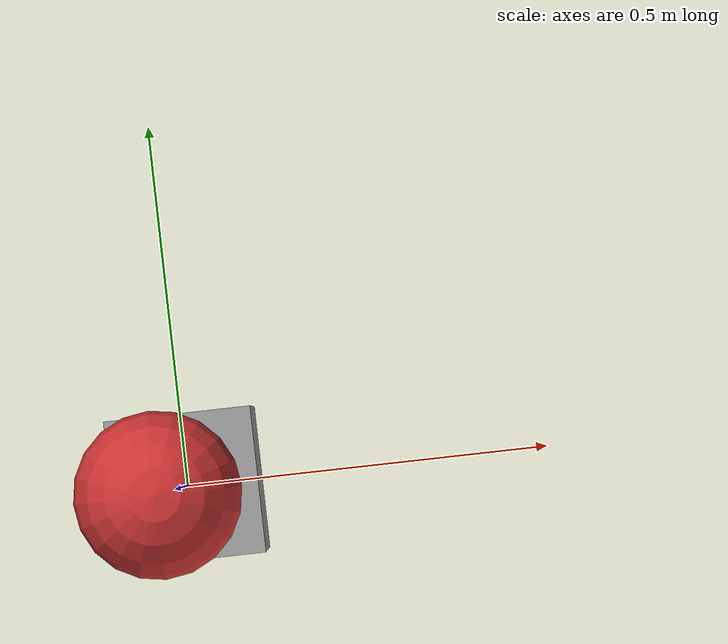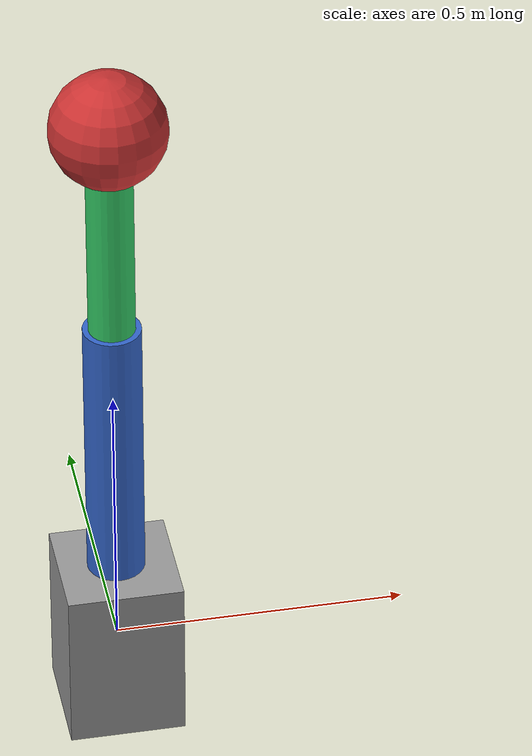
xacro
<?xml version="1.0"?>
<robot name="armstrong_v1" xmlns:xacro="http://www.ros.org/wiki/xacro">

    <xacro:include filename="materials.urdf.xacro" />
    <xacro:include filename="gazebo_plugins.urdf.xacro" />
    <xacro:include filename="ros2_control.urdf.xacro" />
    <xacro:include filename="base.urdf.xacro" />

</robot>

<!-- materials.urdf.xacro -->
<robot xmlns:xacro="http://www.ros.org/wiki/xacro">

  <material name="armstrong_blue">
    <color rgba="0.2 0.4 0.8 1"/>
  </material>

  <material name="armstrong_green">
    <color rgba="0.2 0.8 0.4 1"/>
  </material>

  <material name="armstrong_grey">
    <color rgba="0.6 0.6 0.6 1"/>
  </material>

  <material name="armstrong_red">
    <color rgba="0.8 0.2 0.2 1"/>
  </material>

  <material name="armstrong_black">
    <color rgba="0.15 0.15 0.15 1"/>
  </material>

</robot>

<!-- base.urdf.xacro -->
<robot xmlns:xacro="http://www.ros.org/wiki/xacro">

    <xacro:property name="base_mass" value="100.0" />
    <xacro:property name="base_dx" value="0.2" />
    <xacro:property name="base_dy" value="0.2" />
    <xacro:property name="base_dz" value="0.3" />
    <xacro:property name="link1_mass" value="0.5" />
    <xacro:property name="link1_length" value="0.5" />
    <xacro:property name="link1_radius" value="0.05" />
    <xacro:property name="link2_mass" value="0.3" />
    <xacro:property name="link2_length" value="0.4" />
    <xacro:property name="link2_radius" value="0.04" />
    <xacro:property name="tooltip_radius" value="0.1" />
    <xacro:property name="tooltip_mass" value="0.01" />

    <xacro:macro name="cylinder_inertia" params="mass radius length">
        <inertia ixx="${mass * (3*radius*radius + length*length) / 12.0}"
                 iyy="${mass * (3*radius*radius + length*length) / 12.0}"
                 izz="${mass * radius*radius / 2.0}"
                 ixy="0.0" ixz="0.0" iyz="0.0" />
    </xacro:macro>

    <xacro:macro name="box_inertia" params="mass x y z">
        <inertia ixx="${mass / 12.0 * (y*y + z*z)}"
                 iyy="${mass / 12.0 * (x*x + z*z)}"
                 izz="${mass / 12.0 * (x*x + y*y)}"
                 ixy="0.0" ixz="0.0" iyz="0.0" />
    </xacro:macro>

    <xacro:macro name="sphere_inertia" params="mass radius">
        <inertia ixx="${2.0/5.0 * mass * radius*radius}"
                 iyy="${2.0/5.0 * mass * radius*radius}"
                 izz="${2.0/5.0 * mass * radius*radius}"
                 ixy="0.0" ixz="0.0" iyz="0.0" />
    </xacro:macro>

    <link name="base_link">
        <visual>
            <geometry>
                <box size="${base_dx} ${base_dy} ${base_dz}" />
            </geometry>
            <material name="armstrong_grey"/>
        </visual>
        <collision>
            <geometry>
                <box size="${base_dx} ${base_dy} ${base_dz}" />
            </geometry>
        </collision>
        <inertial>
            <mass value="${base_mass}" />
            <origin xyz="0 0 0" rpy="0 0 0" />
            <xacro:box_inertia mass="${base_mass}" x="${base_dx}" y="${base_dy}" z="${base_dz}" />
        </inertial>
    </link>

    <joint name="joint1" type="revolute">
        <parent link="base_link" />
        <child link="link1" />
        <origin xyz="0 0 ${base_dz/2}" rpy="0 0 0" />
        <axis xyz="0 1 0" />
        <limit lower="${-pi/2}" upper="${pi/2}" effort="100" velocity="3.0" />
        <dynamics damping="0.1" friction="0.1"/>
    </joint>

    <link name="link1">
        <visual>
            <origin xyz="0 0 ${link1_length/2}" rpy="0 0 0" />
            <geometry>
                <cylinder radius="${link1_radius}" length="${link1_length}" />
            </geometry>
            <material name="armstrong_blue"/> </visual>
        <collision>
            <origin xyz="0 0 ${link1_length/2}" rpy="0 0 0" />
            <geometry>
                <cylinder radius="${link1_radius}" length="${link1_length}" />
            </geometry>
        </collision>
        <inertial>
            <mass value="${link1_mass}" />
            <origin xyz="0 0 ${link1_length/2}" rpy="0 0 0" />
            <xacro:cylinder_inertia mass="${link1_mass}" radius="${link1_radius}" length="${link1_length}" />
        </inertial>
    </link>

    <joint name="joint2" type="revolute">
        <parent link="link1" />
        <child link="link2" />
        <origin xyz="0 0 ${link1_length}" rpy="0 0 0" />
        <axis xyz="0 1 0" />
        <limit lower="${-pi/2}" upper="${pi/2}" effort="50" velocity="3.0" />
        <dynamics damping="0.1" friction="0.1"/>
    </joint>

    <link name="link2">
        <visual>
            <origin xyz="0 0 ${link2_length/2}" rpy="0 0 0" />
            <geometry>
                <cylinder radius="${link2_radius}" length="${link2_length}" />
            </geometry>
            <material name="armstrong_green"/> </visual>
        <collision>
            <origin xyz="0 0 ${link2_length/2}" rpy="0 0 0" />
            <geometry>
                <cylinder radius="${link2_radius}" length="${link2_length}" />
            </geometry>
        </collision>
        <inertial>
            <mass value="${link2_mass}" />
            <origin xyz="0 0 ${link2_length/2}" rpy="0 0 0" />
            <xacro:cylinder_inertia mass="${link2_mass}" radius="${link2_radius}" length="${link2_length}" />
        </inertial>
    </link>

    <link name="tool_tip">
        <visual>
            <geometry>
                <sphere radius="${tooltip_radius}" />
            </geometry>
            <material name="armstrong_red"/> </visual>
        <collision>
            <geometry>
                <sphere radius="${tooltip_radius}" />
            </geometry>
        </collision>
        <inertial>
            <mass value="${tooltip_mass}" />
            <origin xyz="0 0 0" rpy="0 0 0" />
            <xacro:sphere_inertia mass="${tooltip_mass}" radius="${tooltip_radius}" />
        </inertial>
    </link>

    <joint name="joint_tool_tip" type="fixed">
        <parent link="link2"/>
        <child link="tool_tip"/>
        <origin xyz="0 0 ${link2_length}" rpy="0 0 0"/>
    </joint>

</robot>
